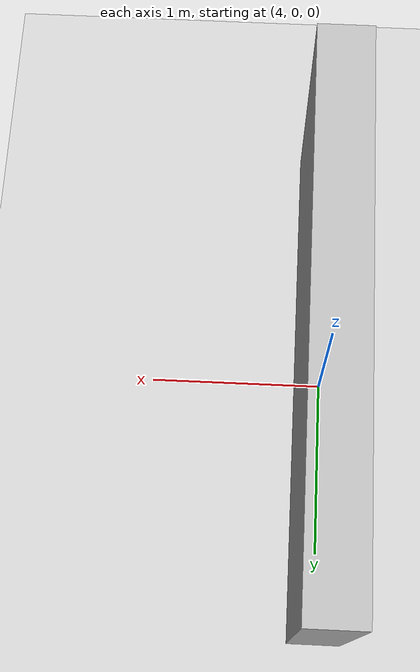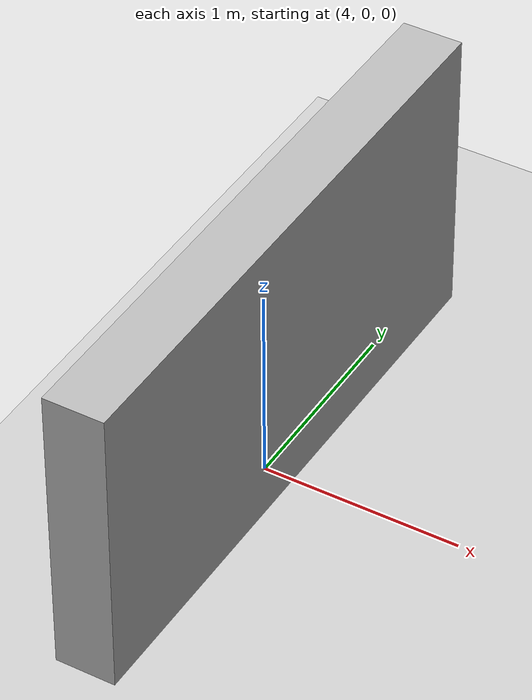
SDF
<?xml version="1.0" ?>
<sdf version="1.6">
  <world name="empty">
    <physics name="1ms" type="ignored">
      <max_step_size>0.001</max_step_size>
      <real_time_factor>1.0</real_time_factor>
    </physics>
    <plugin
      filename="gz-sim-physics-system"
      name="gz::sim::systems::Physics">
    </plugin>
    <plugin
      filename="gz-sim-user-commands-system"
      name="gz::sim::systems::UserCommands">
    </plugin>
    <plugin
      filename="gz-sim-scene-broadcaster-system"
      name="gz::sim::systems::SceneBroadcaster">
    </plugin>
    <plugin
      filename="gz-sim-contact-system"
      name="gz::sim::systems::Contact">
    </plugin>

    <light type="directional" name="sun">
      <cast_shadows>true</cast_shadows>
      <pose>0 0 10 0 0 0</pose>
      <diffuse>0.8 0.8 0.8 1</diffuse>
      <specular>0.2 0.2 0.2 1</specular>
      <attenuation>
        <range>1000</range>
        <constant>0.9</constant>
        <linear>0.01</linear>
        <quadratic>0.001</quadratic>
      </attenuation>
      <direction>-0.5 0.1 -0.9</direction>
    </light>

    <model name="ground_plane">
      <static>true</static>
      <link name="link">
        <collision name="collision">
          <geometry>
            <plane>
              <normal>0 0 1</normal>
              <size>100 100</size>
            </plane>
          </geometry>
        </collision>
        <visual name="visual">
          <geometry>
            <plane>
              <normal>0 0 1</normal>
              <size>100 100</size>
            </plane>
          </geometry>
          <material>
            <ambient>0.8 0.8 0.8 1</ambient>
            <diffuse>0.8 0.8 0.8 1</diffuse>
            <specular>0.8 0.8 0.8 1</specular>
          </material>
        </visual>
      </link>
    </model>

    <plugin filename="gz-sim-imu-system"
            name="gz::sim::systems::Imu"/>

    <plugin filename="gz-sim-sensors-system"
            name="gz::sim::systems::Sensors">
      <render_engine>ogre2</render_engine>
    </plugin>

    <model name="pulse1_test_obstacle">
      <static>true</static>
      <pose>4 0 0.75 0 0 0</pose>
      <link name="body">
        <collision name="collision">
          <geometry>
            <box><size>0.3 3 1.5</size></box>
          </geometry>
        </collision>
        <visual name="visual">
          <geometry>
            <box><size>0.3 3 1.5</size></box>
          </geometry>
        </visual>
      </link>
    </model>
</world>
</sdf>
